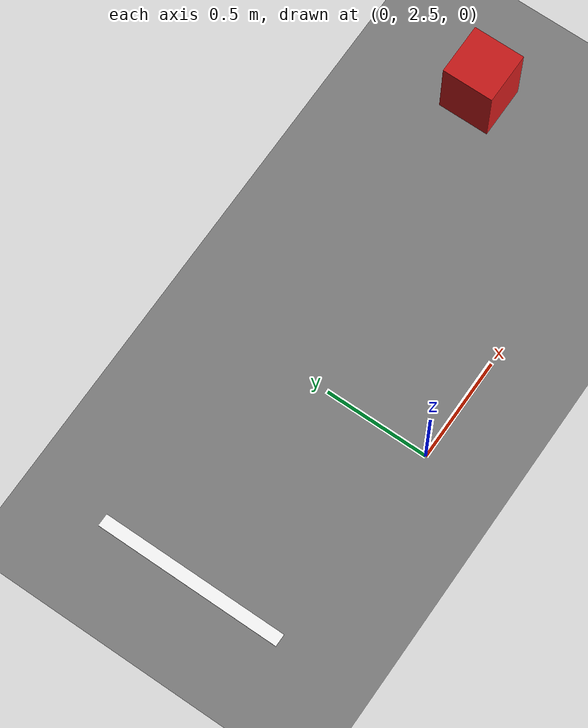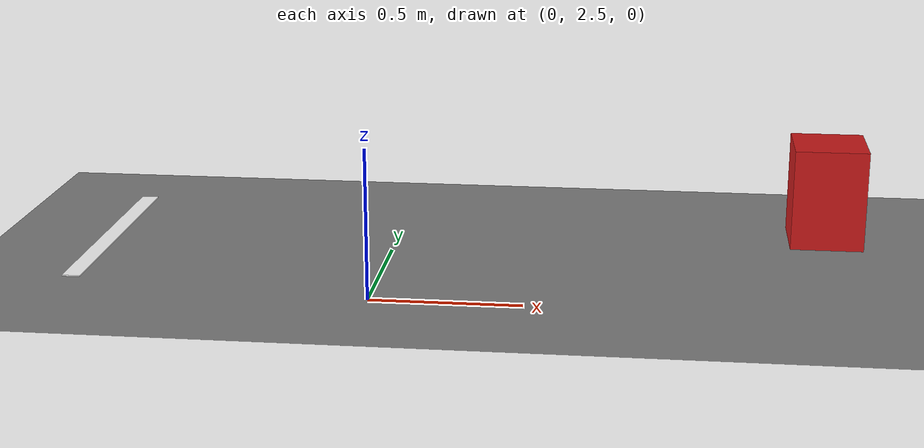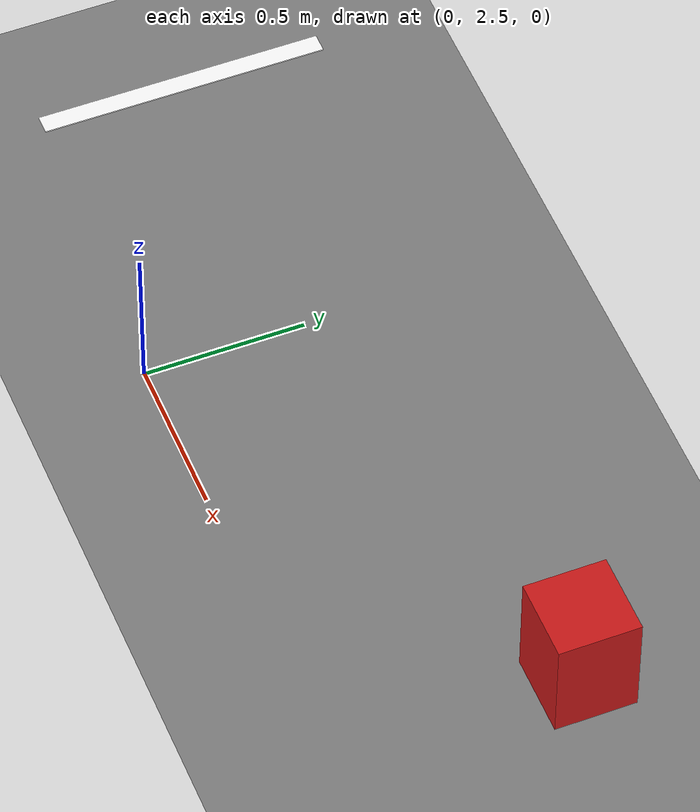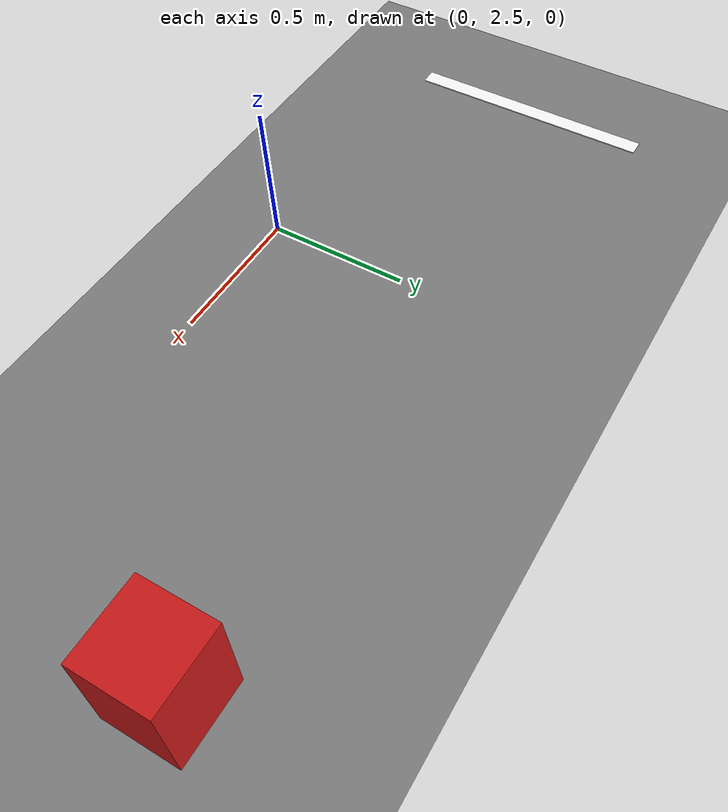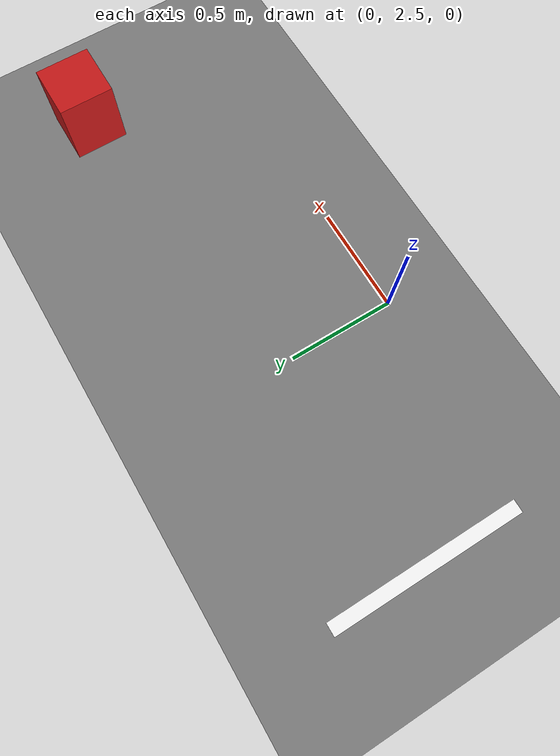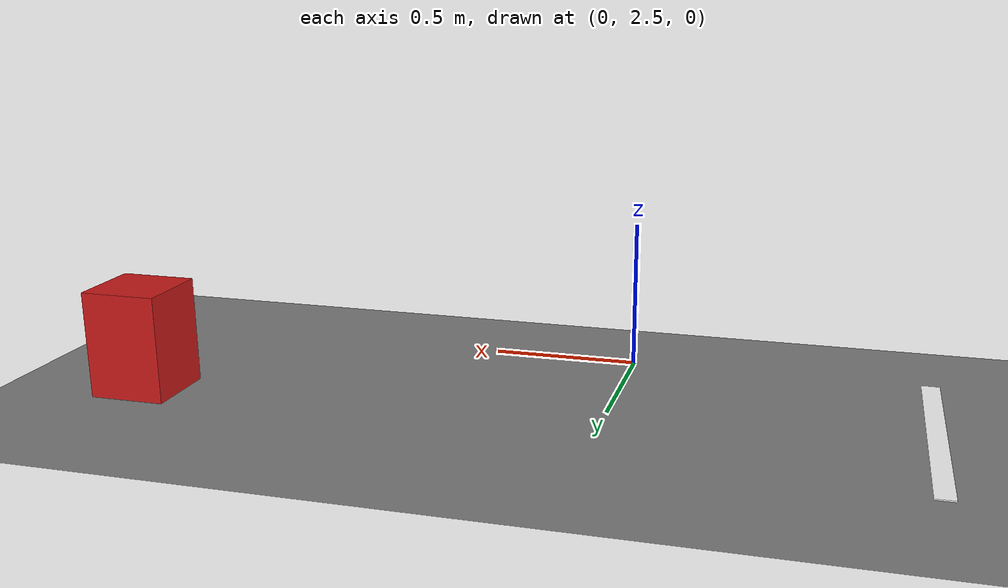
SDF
<sdf version="1.8">
 <world name="default">
  <model name="ground_plane">
   <static>true</static>
   <link name="link">
    <visual name="visual">
     <geometry><plane><normal>0 0 1</normal><size>100 100</size></plane></geometry>
     <material><ambient>0.5 0.5 0.5 1</ambient><diffuse>0.5 0.5 0.5 1</diffuse></material>
    </visual>
   </link>
  </model>
  <model name="race_A_stop_line">
   <static>true</static>
   <pose>-1.0 3.0 0 0 0 0</pose>
   <link name="stop_line_link">
    <visual name="stop_line_visual">
     <pose>0 0 0.024 0 0 0</pose>
     <geometry><box><size>0.06 0.90 0.004</size></box></geometry>
     <material>
      <ambient>1.0 1.0 1.0 1</ambient>
      <diffuse>1.0 1.0 1.0 1</diffuse>
      <emissive>0.2 0.2 0.2 1</emissive>
     </material>
    </visual>
   </link>
  </model>
  <model name="race_A_obstacle">
   <static>true</static>
   <pose>1.5 3.225 0.195 0 0 0</pose>
   <link name="race_A_obstacle_link">
    <collision name="race_A_obstacle_collision">
     <geometry><box><size>0.25 0.25 0.35</size></box></geometry>
    </collision>
    <visual name="race_A_obstacle_visual">
     <geometry><box><size>0.25 0.25 0.35</size></box></geometry>
     <material><ambient>0.8 0.1 0.1 1</ambient><diffuse>0.8 0.1 0.1 1</diffuse></material>
    </visual>
   </link>
  </model>
 </world>
</sdf>
